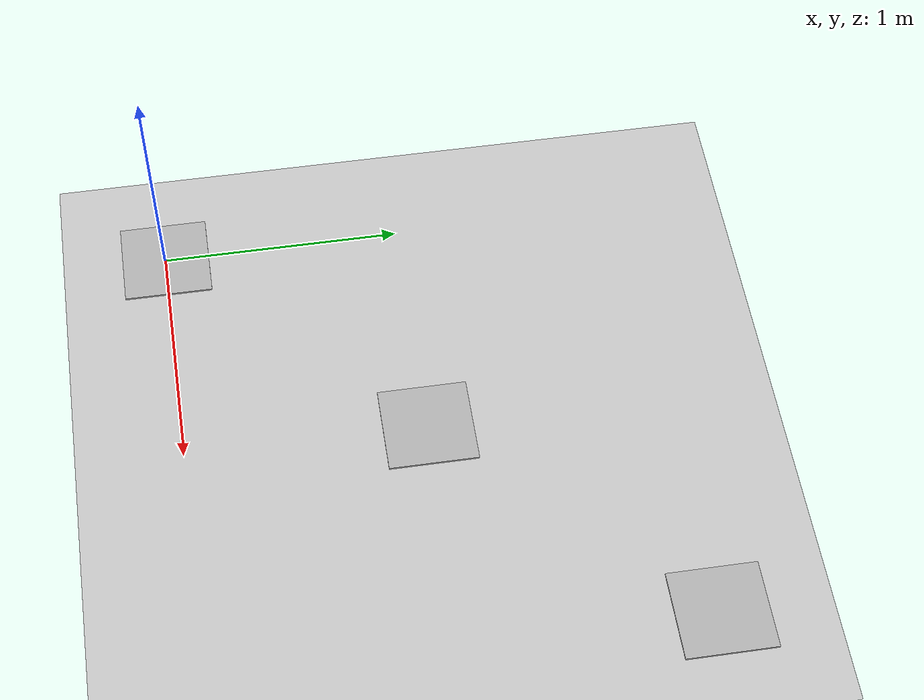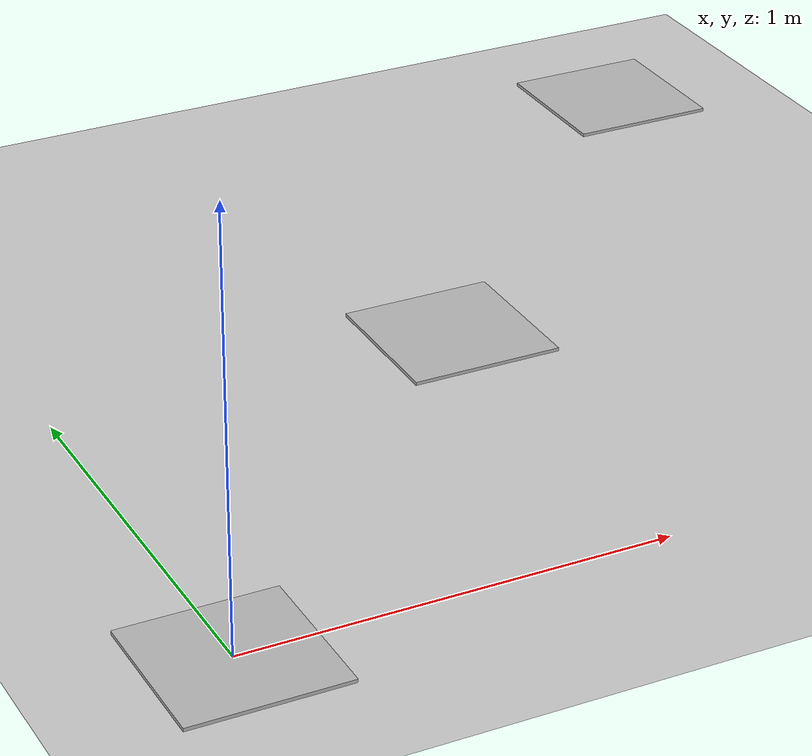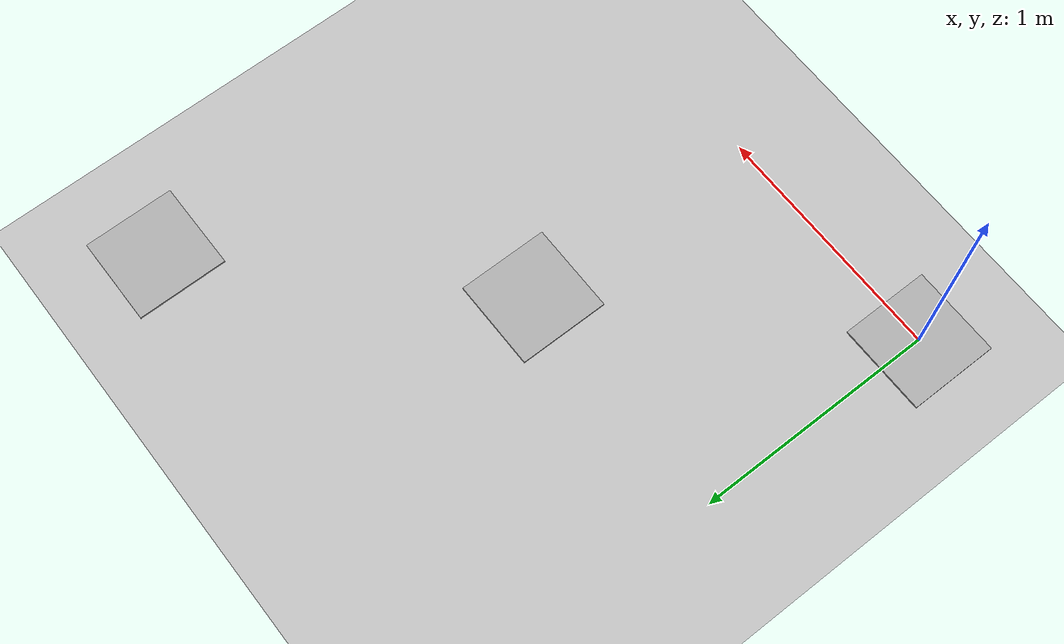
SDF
<sdf version="1.7">
 <world name="default">
  <light name="sun" type="directional">
   <pose>0 0 10 0 -0 0</pose>
   <diffuse>0.8 0.8 0.8 1</diffuse>
   <specular>0.2 0.2 0.2 1</specular>
   <attenuation>
    <range>1000</range>
    <constant>0.9</constant>
    <linear>0.01</linear>
    <quadratic>0.001</quadratic>
   </attenuation>
   <direction>-0.5 0.1 -0.9</direction>
   <spot><inner_angle>0</inner_angle><outer_angle>0</outer_angle><falloff>0</falloff></spot>
  </light>
  <model name="ground_plane">
   <static>1</static>
   <link name="link">
    <collision name="collision">
     <geometry><plane><normal>0 0 1</normal><size>100 100</size></plane></geometry>
     <surface>
      <contact><collide_bitmask>65535</collide_bitmask></contact>
      <friction><ode><mu>100</mu><mu2>50</mu2></ode></friction>
     </surface>
    </collision>
    <visual name="visual">
     <cast_shadows>0</cast_shadows>
     <geometry><plane><normal>0 0 1</normal><size>100 100</size></plane></geometry>
     <material>
      <script><uri>file://media/materials/scripts/gazebo.material</uri><name>Gazebo/Grey</name></script>
     </material>
    </visual>
   </link>
  </model>
  <gravity>0 0 -9.8</gravity>
  <magnetic_field>6e-06 2.3e-05 -4.2e-05</magnetic_field>
  <atmosphere type="adiabatic"/>
  <physics type="ode">
   <max_step_size>0.001</max_step_size>
   <real_time_factor>1</real_time_factor>
   <real_time_update_rate>1000</real_time_update_rate>
  </physics>
  <scene><ambient>0.4 0.4 0.4 1</ambient><background>0.7 0.7 0.7 1</background><shadows>1</shadows></scene>
  <spherical_coordinates>
   <surface_model>EARTH_WGS84</surface_model>
   <latitude_deg>0</latitude_deg>
   <longitude_deg>0</longitude_deg>
   <elevation>0</elevation>
   <heading_deg>0</heading_deg>
  </spherical_coordinates>
  <model name="Tag36h11_0">
   <static>1</static>
   <link name="link">
    <collision name="collision"><geometry><box><size>0.3702 0.3702 0.01</size></box></geometry></collision>
    <visual name="visual">
     <cast_shadows>0</cast_shadows>
     <geometry><box><size>0.3702 0.3702 0.01</size></box></geometry>
     <material>
      <script>
       <uri>model://Tag36h11_0/materials/scripts</uri>
       <uri>model://Tag36h11_0/materials/textures</uri>
       <name>Tag36h11_0</name>
      </script>
     </material>
    </visual>
   </link>
  </model>
  <model name="Tag36h11_1">
   <static>1</static>
   <link name="link">
    <collision name="collision"><geometry><box><size>0.3702 0.3702 0.01</size></box></geometry></collision>
    <visual name="visual">
     <cast_shadows>0</cast_shadows>
     <geometry><box><size>0.3702 0.3702 0.01</size></box></geometry>
     <material>
      <script>
       <uri>model://Tag36h11_1/materials/scripts</uri>
       <uri>model://Tag36h11_1/materials/textures</uri>
       <name>Tag36h11_1</name>
      </script>
     </material>
    </visual>
   </link>
   <pose>1 1 0 0 -0 0</pose>
  </model>
  <model name="Tag36h11_2">
   <static>1</static>
   <link name="link">
    <collision name="collision"><geometry><box><size>0.3702 0.3702 0.01</size></box></geometry></collision>
    <visual name="visual">
     <cast_shadows>0</cast_shadows>
     <geometry><box><size>0.3702 0.3702 0.01</size></box></geometry>
     <material>
      <script>
       <uri>model://Tag36h11_2/materials/scripts</uri>
       <uri>model://Tag36h11_2/materials/textures</uri>
       <name>Tag36h11_2</name>
      </script>
     </material>
    </visual>
   </link>
   <pose>2 2 0 0 -0 0</pose>
  </model>
 </world>
</sdf>
